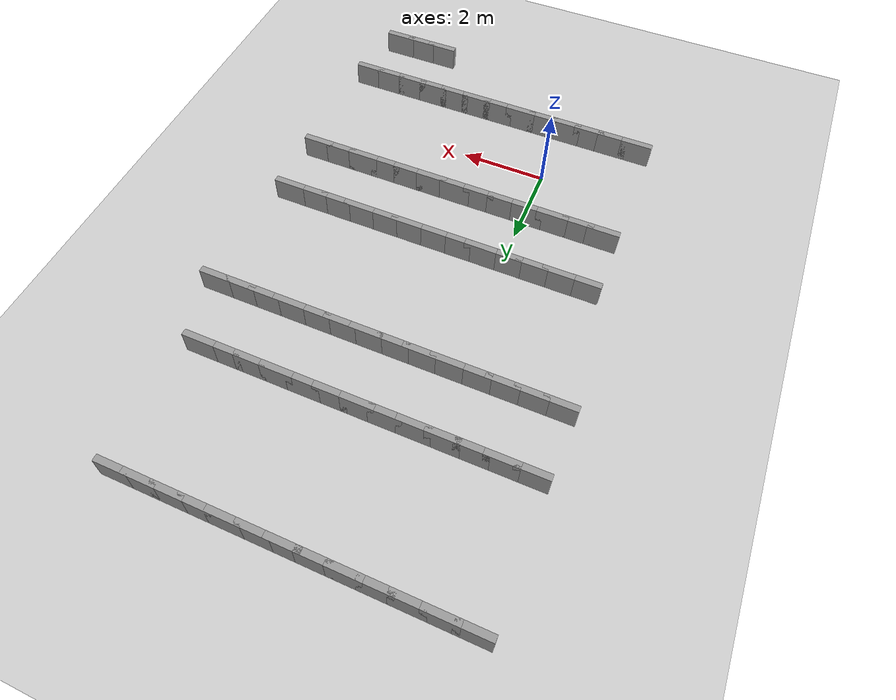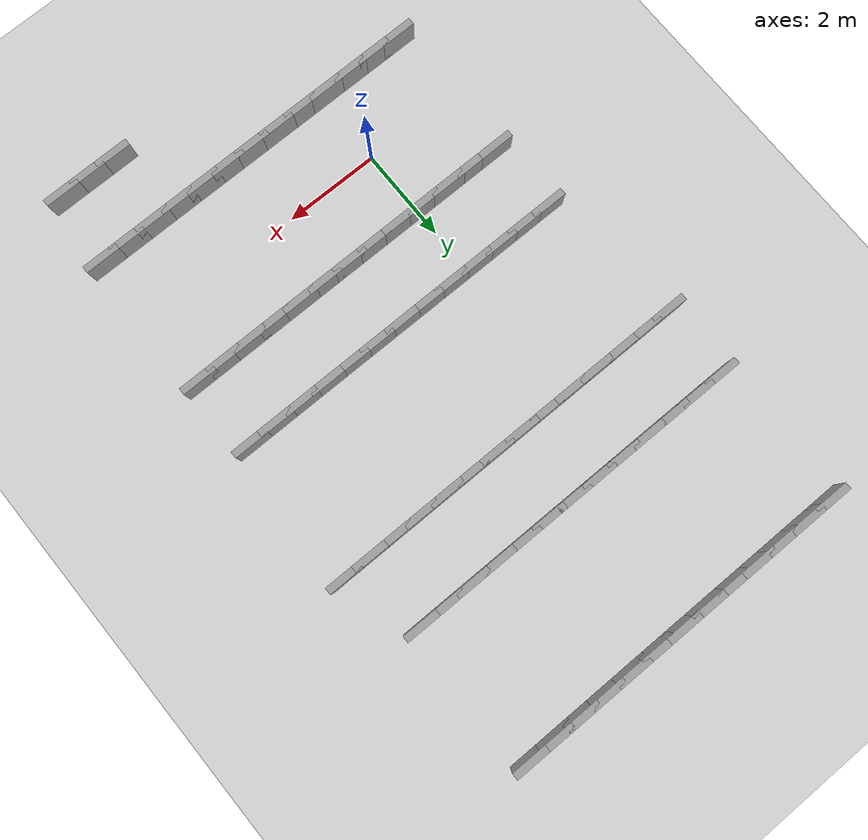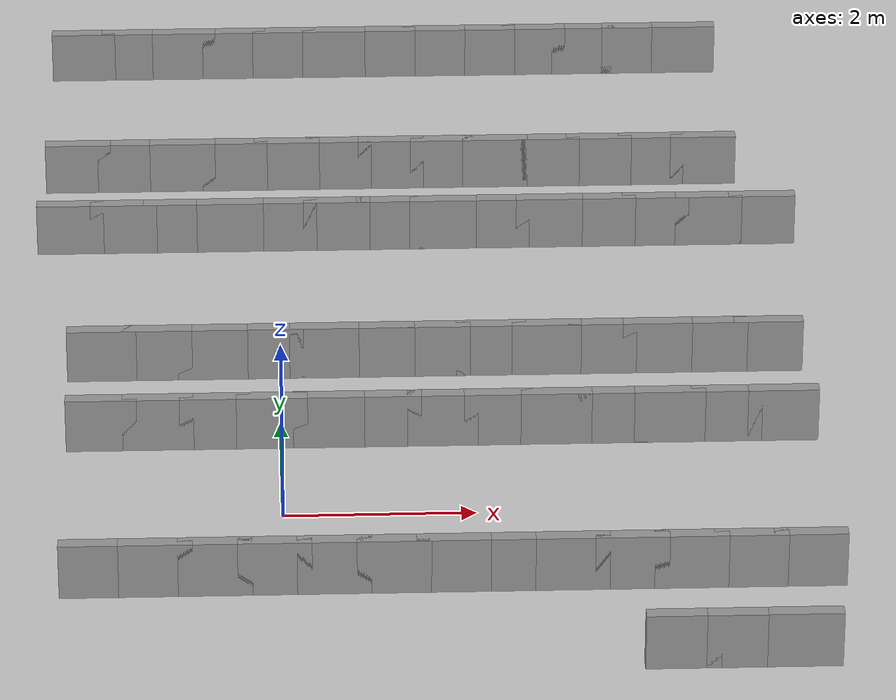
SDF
<sdf version="1.7">
 <world name="default">
  <model name="ground_plane">
   <static>1</static>
   <link name="link">
    <collision name="collision">
     <geometry><plane><normal>0 0 1</normal><size>100 100</size></plane></geometry>
     <surface><friction><ode><mu>100</mu><mu2>50</mu2></ode></friction></surface>
    </collision>
    <visual name="visual">
     <cast_shadows>0</cast_shadows>
     <geometry><plane><normal>0 0 1</normal><size>100 100</size></plane></geometry>
     <material>
      <script><uri>file://media/materials/scripts/gazebo.material</uri><name>Gazebo/Grey</name></script>
     </material>
    </visual>
   </link>
  </model>
  <model name="rand_serp_02">
   <link name="Wall_12">
    <collision name="Wall_12_Collision">
     <geometry><box><size>0.7500 0.1500 0.6000</size></box></geometry>
     <pose>0 0 0.3000 0 -0 0</pose>
    </collision>
    <visual name="Wall_12_Visual">
     <pose>0 0 0.3000 0 -0 0</pose>
     <geometry><box><size>0.7500 0.1500 0.6000</size></box></geometry>
     <material>
      <script><uri>file://media/materials/scripts/gazebo.material</uri><name>Gazebo/Grey</name></script>
      <ambient>1 1 1 1</ambient>
     </material>
    </visual>
    <pose>-2.2659 10.6147 0 0 -0 0.00000</pose>
   </link>
   <link name="Wall_13">
    <collision name="Wall_13_Collision">
     <geometry><box><size>0.7500 0.1500 0.6000</size></box></geometry>
     <pose>0 0 0.3000 0 -0 0</pose>
    </collision>
    <visual name="Wall_13_Visual">
     <pose>0 0 0.3000 0 -0 0</pose>
     <geometry><box><size>0.7500 0.1500 0.6000</size></box></geometry>
     <material>
      <script><uri>file://media/materials/scripts/gazebo.material</uri><name>Gazebo/Grey</name></script>
      <ambient>1 1 1 1</ambient>
     </material>
    </visual>
    <pose>-1.6659 10.6147 0 0 -0 0.00000</pose>
   </link>
   <link name="Wall_14">
    <collision name="Wall_14_Collision">
     <geometry><box><size>0.7500 0.1500 0.6000</size></box></geometry>
     <pose>0 0 0.3000 0 -0 0</pose>
    </collision>
    <visual name="Wall_14_Visual">
     <pose>0 0 0.3000 0 -0 0</pose>
     <geometry><box><size>0.7500 0.1500 0.6000</size></box></geometry>
     <material>
      <script><uri>file://media/materials/scripts/gazebo.material</uri><name>Gazebo/Grey</name></script>
      <ambient>1 1 1 1</ambient>
     </material>
    </visual>
    <pose>-1.0659 10.6147 0 0 -0 0.00000</pose>
   </link>
   <link name="Wall_15">
    <collision name="Wall_15_Collision">
     <geometry><box><size>0.7500 0.1500 0.6000</size></box></geometry>
     <pose>0 0 0.3000 0 -0 0</pose>
    </collision>
    <visual name="Wall_15_Visual">
     <pose>0 0 0.3000 0 -0 0</pose>
     <geometry><box><size>0.7500 0.1500 0.6000</size></box></geometry>
     <material>
      <script><uri>file://media/materials/scripts/gazebo.material</uri><name>Gazebo/Grey</name></script>
      <ambient>1 1 1 1</ambient>
     </material>
    </visual>
    <pose>-0.4659 10.6147 0 0 -0 0.00000</pose>
   </link>
   <link name="Wall_16">
    <collision name="Wall_16_Collision">
     <geometry><box><size>0.7500 0.1500 0.6000</size></box></geometry>
     <pose>0 0 0.3000 0 -0 0</pose>
    </collision>
    <visual name="Wall_16_Visual">
     <pose>0 0 0.3000 0 -0 0</pose>
     <geometry><box><size>0.7500 0.1500 0.6000</size></box></geometry>
     <material>
      <script><uri>file://media/materials/scripts/gazebo.material</uri><name>Gazebo/Grey</name></script>
      <ambient>1 1 1 1</ambient>
     </material>
    </visual>
    <pose>0.1341 10.6147 0 0 -0 0.00000</pose>
   </link>
   <link name="Wall_17">
    <collision name="Wall_17_Collision">
     <geometry><box><size>0.7500 0.1500 0.6000</size></box></geometry>
     <pose>0 0 0.3000 0 -0 0</pose>
    </collision>
    <visual name="Wall_17_Visual">
     <pose>0 0 0.3000 0 -0 0</pose>
     <geometry><box><size>0.7500 0.1500 0.6000</size></box></geometry>
     <material>
      <script><uri>file://media/materials/scripts/gazebo.material</uri><name>Gazebo/Grey</name></script>
      <ambient>1 1 1 1</ambient>
     </material>
    </visual>
    <pose>0.7341 10.6147 0 0 -0 0.00000</pose>
   </link>
   <link name="Wall_18">
    <collision name="Wall_18_Collision">
     <geometry><box><size>0.7500 0.1500 0.6000</size></box></geometry>
     <pose>0 0 0.3000 0 -0 0</pose>
    </collision>
    <visual name="Wall_18_Visual">
     <pose>0 0 0.3000 0 -0 0</pose>
     <geometry><box><size>0.7500 0.1500 0.6000</size></box></geometry>
     <material>
      <script><uri>file://media/materials/scripts/gazebo.material</uri><name>Gazebo/Grey</name></script>
      <ambient>1 1 1 1</ambient>
     </material>
    </visual>
    <pose>1.3341 10.6147 0 0 -0 0.00000</pose>
   </link>
   <link name="Wall_19">
    <collision name="Wall_19_Collision">
     <geometry><box><size>0.7500 0.1500 0.6000</size></box></geometry>
     <pose>0 0 0.3000 0 -0 0</pose>
    </collision>
    <visual name="Wall_19_Visual">
     <pose>0 0 0.3000 0 -0 0</pose>
     <geometry><box><size>0.7500 0.1500 0.6000</size></box></geometry>
     <material>
      <script><uri>file://media/materials/scripts/gazebo.material</uri><name>Gazebo/Grey</name></script>
      <ambient>1 1 1 1</ambient>
     </material>
    </visual>
    <pose>1.9341 10.6147 0 0 -0 0.00000</pose>
   </link>
   <link name="Wall_20">
    <collision name="Wall_20_Collision">
     <geometry><box><size>0.7500 0.1500 0.6000</size></box></geometry>
     <pose>0 0 0.3000 0 -0 0</pose>
    </collision>
    <visual name="Wall_20_Visual">
     <pose>0 0 0.3000 0 -0 0</pose>
     <geometry><box><size>0.7500 0.1500 0.6000</size></box></geometry>
     <material>
      <script><uri>file://media/materials/scripts/gazebo.material</uri><name>Gazebo/Grey</name></script>
      <ambient>1 1 1 1</ambient>
     </material>
    </visual>
    <pose>2.5341 10.6147 0 0 -0 0.00000</pose>
   </link>
   <link name="Wall_21">
    <collision name="Wall_21_Collision">
     <geometry><box><size>0.7500 0.1500 0.6000</size></box></geometry>
     <pose>0 0 0.3000 0 -0 0</pose>
    </collision>
    <visual name="Wall_21_Visual">
     <pose>0 0 0.3000 0 -0 0</pose>
     <geometry><box><size>0.7500 0.1500 0.6000</size></box></geometry>
     <material>
      <script><uri>file://media/materials/scripts/gazebo.material</uri><name>Gazebo/Grey</name></script>
      <ambient>1 1 1 1</ambient>
     </material>
    </visual>
    <pose>3.1341 10.6147 0 0 -0 0.00000</pose>
   </link>
   <link name="Wall_22">
    <collision name="Wall_22_Collision">
     <geometry><box><size>0.7500 0.1500 0.6000</size></box></geometry>
     <pose>0 0 0.3000 0 -0 0</pose>
    </collision>
    <visual name="Wall_22_Visual">
     <pose>0 0 0.3000 0 -0 0</pose>
     <geometry><box><size>0.7500 0.1500 0.6000</size></box></geometry>
     <material>
      <script><uri>file://media/materials/scripts/gazebo.material</uri><name>Gazebo/Grey</name></script>
      <ambient>1 1 1 1</ambient>
     </material>
    </visual>
    <pose>3.7341 10.6147 0 0 -0 0.00000</pose>
   </link>
   <link name="Wall_23">
    <collision name="Wall_23_Collision">
     <geometry><box><size>0.7500 0.1500 0.6000</size></box></geometry>
     <pose>0 0 0.3000 0 -0 0</pose>
    </collision>
    <visual name="Wall_23_Visual">
     <pose>0 0 0.3000 0 -0 0</pose>
     <geometry><box><size>0.7500 0.1500 0.6000</size></box></geometry>
     <material>
      <script><uri>file://media/materials/scripts/gazebo.material</uri><name>Gazebo/Grey</name></script>
      <ambient>1 1 1 1</ambient>
     </material>
    </visual>
    <pose>4.3341 10.6147 0 0 -0 0.00000</pose>
   </link>
   <link name="Wall_24">
    <collision name="Wall_24_Collision">
     <geometry><box><size>0.7500 0.1500 0.6000</size></box></geometry>
     <pose>0 0 0.3000 0 -0 0</pose>
    </collision>
    <visual name="Wall_24_Visual">
     <pose>0 0 0.3000 0 -0 0</pose>
     <geometry><box><size>0.7500 0.1500 0.6000</size></box></geometry>
     <material>
      <script><uri>file://media/materials/scripts/gazebo.material</uri><name>Gazebo/Grey</name></script>
      <ambient>1 1 1 1</ambient>
     </material>
    </visual>
    <pose>4.9341 10.6147 0 0 -0 0.00000</pose>
   </link>
   <link name="Wall_57">
    <collision name="Wall_57_Collision">
     <geometry><box><size>0.7500 0.1500 0.6000</size></box></geometry>
     <pose>0 0 0.3000 0 -0 0</pose>
    </collision>
    <visual name="Wall_57_Visual">
     <pose>0 0 0.3000 0 -0 0</pose>
     <geometry><box><size>0.7500 0.1500 0.6000</size></box></geometry>
     <material>
      <script><uri>file://media/materials/scripts/gazebo.material</uri><name>Gazebo/Grey</name></script>
      <ambient>1 1 1 1</ambient>
     </material>
    </visual>
    <pose>5.2833 3.0475 0 0 -0 3.14159</pose>
   </link>
   <link name="Wall_58">
    <collision name="Wall_58_Collision">
     <geometry><box><size>0.7500 0.1500 0.6000</size></box></geometry>
     <pose>0 0 0.3000 0 -0 0</pose>
    </collision>
    <visual name="Wall_58_Visual">
     <pose>0 0 0.3000 0 -0 0</pose>
     <geometry><box><size>0.7500 0.1500 0.6000</size></box></geometry>
     <material>
      <script><uri>file://media/materials/scripts/gazebo.material</uri><name>Gazebo/Grey</name></script>
      <ambient>1 1 1 1</ambient>
     </material>
    </visual>
    <pose>4.6833 3.0475 0 0 -0 3.14159</pose>
   </link>
   <link name="Wall_59">
    <collision name="Wall_59_Collision">
     <geometry><box><size>0.7500 0.1500 0.6000</size></box></geometry>
     <pose>0 0 0.3000 0 -0 0</pose>
    </collision>
    <visual name="Wall_59_Visual">
     <pose>0 0 0.3000 0 -0 0</pose>
     <geometry><box><size>0.7500 0.1500 0.6000</size></box></geometry>
     <material>
      <script><uri>file://media/materials/scripts/gazebo.material</uri><name>Gazebo/Grey</name></script>
      <ambient>1 1 1 1</ambient>
     </material>
    </visual>
    <pose>4.0833 3.0475 0 0 -0 3.14159</pose>
   </link>
   <link name="Wall_60">
    <collision name="Wall_60_Collision">
     <geometry><box><size>0.7500 0.1500 0.6000</size></box></geometry>
     <pose>0 0 0.3000 0 -0 0</pose>
    </collision>
    <visual name="Wall_60_Visual">
     <pose>0 0 0.3000 0 -0 0</pose>
     <geometry><box><size>0.7500 0.1500 0.6000</size></box></geometry>
     <material>
      <script><uri>file://media/materials/scripts/gazebo.material</uri><name>Gazebo/Grey</name></script>
      <ambient>1 1 1 1</ambient>
     </material>
    </visual>
    <pose>3.4833 3.0475 0 0 -0 3.14159</pose>
   </link>
   <link name="Wall_61">
    <collision name="Wall_61_Collision">
     <geometry><box><size>0.7500 0.1500 0.6000</size></box></geometry>
     <pose>0 0 0.3000 0 -0 0</pose>
    </collision>
    <visual name="Wall_61_Visual">
     <pose>0 0 0.3000 0 -0 0</pose>
     <geometry><box><size>0.7500 0.1500 0.6000</size></box></geometry>
     <material>
      <script><uri>file://media/materials/scripts/gazebo.material</uri><name>Gazebo/Grey</name></script>
      <ambient>1 1 1 1</ambient>
     </material>
    </visual>
    <pose>2.8833 3.0475 0 0 -0 3.14159</pose>
   </link>
   <link name="Wall_62">
    <collision name="Wall_62_Collision">
     <geometry><box><size>0.7500 0.1500 0.6000</size></box></geometry>
     <pose>0 0 0.3000 0 -0 0</pose>
    </collision>
    <visual name="Wall_62_Visual">
     <pose>0 0 0.3000 0 -0 0</pose>
     <geometry><box><size>0.7500 0.1500 0.6000</size></box></geometry>
     <material>
      <script><uri>file://media/materials/scripts/gazebo.material</uri><name>Gazebo/Grey</name></script>
      <ambient>1 1 1 1</ambient>
     </material>
    </visual>
    <pose>2.2833 3.0475 0 0 -0 3.14159</pose>
   </link>
   <link name="Wall_63">
    <collision name="Wall_63_Collision">
     <geometry><box><size>0.7500 0.1500 0.6000</size></box></geometry>
     <pose>0 0 0.3000 0 -0 0</pose>
    </collision>
    <visual name="Wall_63_Visual">
     <pose>0 0 0.3000 0 -0 0</pose>
     <geometry><box><size>0.7500 0.1500 0.6000</size></box></geometry>
     <material>
      <script><uri>file://media/materials/scripts/gazebo.material</uri><name>Gazebo/Grey</name></script>
      <ambient>1 1 1 1</ambient>
     </material>
    </visual>
    <pose>1.6833 3.0475 0 0 -0 3.14159</pose>
   </link>
   <link name="Wall_64">
    <collision name="Wall_64_Collision">
     <geometry><box><size>0.7500 0.1500 0.6000</size></box></geometry>
     <pose>0 0 0.3000 0 -0 0</pose>
    </collision>
    <visual name="Wall_64_Visual">
     <pose>0 0 0.3000 0 -0 0</pose>
     <geometry><box><size>0.7500 0.1500 0.6000</size></box></geometry>
     <material>
      <script><uri>file://media/materials/scripts/gazebo.material</uri><name>Gazebo/Grey</name></script>
      <ambient>1 1 1 1</ambient>
     </material>
    </visual>
    <pose>1.0833 3.0475 0 0 -0 3.14159</pose>
   </link>
   <link name="Wall_65">
    <collision name="Wall_65_Collision">
     <geometry><box><size>0.7500 0.1500 0.6000</size></box></geometry>
     <pose>0 0 0.3000 0 -0 0</pose>
    </collision>
    <visual name="Wall_65_Visual">
     <pose>0 0 0.3000 0 -0 0</pose>
     <geometry><box><size>0.7500 0.1500 0.6000</size></box></geometry>
     <material>
      <script><uri>file://media/materials/scripts/gazebo.material</uri><name>Gazebo/Grey</name></script>
      <ambient>1 1 1 1</ambient>
     </material>
    </visual>
    <pose>0.4833 3.0475 0 0 -0 3.14159</pose>
   </link>
   <link name="Wall_66">
    <collision name="Wall_66_Collision">
     <geometry><box><size>0.7500 0.1500 0.6000</size></box></geometry>
     <pose>0 0 0.3000 0 -0 0</pose>
    </collision>
    <visual name="Wall_66_Visual">
     <pose>0 0 0.3000 0 -0 0</pose>
     <geometry><box><size>0.7500 0.1500 0.6000</size></box></geometry>
     <material>
      <script><uri>file://media/materials/scripts/gazebo.material</uri><name>Gazebo/Grey</name></script>
      <ambient>1 1 1 1</ambient>
     </material>
    </visual>
    <pose>-0.1167 3.0475 0 0 -0 3.14159</pose>
   </link>
   <link name="Wall_67">
    <collision name="Wall_67_Collision">
     <geometry><box><size>0.7500 0.1500 0.6000</size></box></geometry>
     <pose>0 0 0.3000 0 -0 0</pose>
    </collision>
    <visual name="Wall_67_Visual">
     <pose>0 0 0.3000 0 -0 0</pose>
     <geometry><box><size>0.7500 0.1500 0.6000</size></box></geometry>
     <material>
      <script><uri>file://media/materials/scripts/gazebo.material</uri><name>Gazebo/Grey</name></script>
      <ambient>1 1 1 1</ambient>
     </material>
    </visual>
    <pose>-0.7167 3.0475 0 0 -0 3.14159</pose>
   </link>
   <link name="Wall_68">
    <collision name="Wall_68_Collision">
     <geometry><box><size>0.7500 0.1500 0.6000</size></box></geometry>
     <pose>0 0 0.3000 0 -0 0</pose>
    </collision>
    <visual name="Wall_68_Visual">
     <pose>0 0 0.3000 0 -0 0</pose>
     <geometry><box><size>0.7500 0.1500 0.6000</size></box></geometry>
     <material>
      <script><uri>file://media/materials/scripts/gazebo.material</uri><name>Gazebo/Grey</name></script>
      <ambient>1 1 1 1</ambient>
     </material>
    </visual>
    <pose>-1.3167 3.0475 0 0 -0 3.14159</pose>
   </link>
   <link name="Wall_69">
    <collision name="Wall_69_Collision">
     <geometry><box><size>0.7500 0.1500 0.6000</size></box></geometry>
     <pose>0 0 0.3000 0 -0 0</pose>
    </collision>
    <visual name="Wall_69_Visual">
     <pose>0 0 0.3000 0 -0 0</pose>
     <geometry><box><size>0.7500 0.1500 0.6000</size></box></geometry>
     <material>
      <script><uri>file://media/materials/scripts/gazebo.material</uri><name>Gazebo/Grey</name></script>
      <ambient>1 1 1 1</ambient>
     </material>
    </visual>
    <pose>-1.9167 3.0475 0 0 -0 3.14159</pose>
   </link>
   <link name="Wall_97">
    <collision name="Wall_97_Collision">
     <geometry><box><size>0.7500 0.1500 0.6000</size></box></geometry>
     <pose>0 0 0.3000 0 -0 0</pose>
    </collision>
    <visual name="Wall_97_Visual">
     <pose>0 0 0.3000 0 -0 0</pose>
     <geometry><box><size>0.7500 0.1500 0.6000</size></box></geometry>
     <material>
      <script><uri>file://media/materials/scripts/gazebo.material</uri><name>Gazebo/Grey</name></script>
      <ambient>1 1 1 1</ambient>
     </material>
    </visual>
    <pose>-1.8952 1.5066 0 0 -0 0.00000</pose>
   </link>
   <link name="Wall_98">
    <collision name="Wall_98_Collision">
     <geometry><box><size>0.7500 0.1500 0.6000</size></box></geometry>
     <pose>0 0 0.3000 0 -0 0</pose>
    </collision>
    <visual name="Wall_98_Visual">
     <pose>0 0 0.3000 0 -0 0</pose>
     <geometry><box><size>0.7500 0.1500 0.6000</size></box></geometry>
     <material>
      <script><uri>file://media/materials/scripts/gazebo.material</uri><name>Gazebo/Grey</name></script>
      <ambient>1 1 1 1</ambient>
     </material>
    </visual>
    <pose>-1.2952 1.5066 0 0 -0 0.00000</pose>
   </link>
   <link name="Wall_99">
    <collision name="Wall_99_Collision">
     <geometry><box><size>0.7500 0.1500 0.6000</size></box></geometry>
     <pose>0 0 0.3000 0 -0 0</pose>
    </collision>
    <visual name="Wall_99_Visual">
     <pose>0 0 0.3000 0 -0 0</pose>
     <geometry><box><size>0.7500 0.1500 0.6000</size></box></geometry>
     <material>
      <script><uri>file://media/materials/scripts/gazebo.material</uri><name>Gazebo/Grey</name></script>
      <ambient>1 1 1 1</ambient>
     </material>
    </visual>
    <pose>-0.6952 1.5066 0 0 -0 0.00000</pose>
   </link>
   <link name="Wall_100">
    <collision name="Wall_100_Collision">
     <geometry><box><size>0.7500 0.1500 0.6000</size></box></geometry>
     <pose>0 0 0.3000 0 -0 0</pose>
    </collision>
    <visual name="Wall_100_Visual">
     <pose>0 0 0.3000 0 -0 0</pose>
     <geometry><box><size>0.7500 0.1500 0.6000</size></box></geometry>
     <material>
      <script><uri>file://media/materials/scripts/gazebo.material</uri><name>Gazebo/Grey</name></script>
      <ambient>1 1 1 1</ambient>
     </material>
    </visual>
    <pose>-0.0952 1.5066 0 0 -0 0.00000</pose>
   </link>
   <link name="Wall_101">
    <collision name="Wall_101_Collision">
     <geometry><box><size>0.7500 0.1500 0.6000</size></box></geometry>
     <pose>0 0 0.3000 0 -0 0</pose>
    </collision>
    <visual name="Wall_101_Visual">
     <pose>0 0 0.3000 0 -0 0</pose>
     <geometry><box><size>0.7500 0.1500 0.6000</size></box></geometry>
     <material>
      <script><uri>file://media/materials/scripts/gazebo.material</uri><name>Gazebo/Grey</name></script>
      <ambient>1 1 1 1</ambient>
     </material>
    </visual>
    <pose>0.5048 1.5066 0 0 -0 0.00000</pose>
   </link>
   <link name="Wall_102">
    <collision name="Wall_102_Collision">
     <geometry><box><size>0.7500 0.1500 0.6000</size></box></geometry>
     <pose>0 0 0.3000 0 -0 0</pose>
    </collision>
    <visual name="Wall_102_Visual">
     <pose>0 0 0.3000 0 -0 0</pose>
     <geometry><box><size>0.7500 0.1500 0.6000</size></box></geometry>
     <material>
      <script><uri>file://media/materials/scripts/gazebo.material</uri><name>Gazebo/Grey</name></script>
      <ambient>1 1 1 1</ambient>
     </material>
    </visual>
    <pose>1.1048 1.5066 0 0 -0 0.00000</pose>
   </link>
   <link name="Wall_103">
    <collision name="Wall_103_Collision">
     <geometry><box><size>0.7500 0.1500 0.6000</size></box></geometry>
     <pose>0 0 0.3000 0 -0 0</pose>
    </collision>
    <visual name="Wall_103_Visual">
     <pose>0 0 0.3000 0 -0 0</pose>
     <geometry><box><size>0.7500 0.1500 0.6000</size></box></geometry>
     <material>
      <script><uri>file://media/materials/scripts/gazebo.material</uri><name>Gazebo/Grey</name></script>
      <ambient>1 1 1 1</ambient>
     </material>
    </visual>
    <pose>1.7048 1.5066 0 0 -0 0.00000</pose>
   </link>
   <link name="Wall_104">
    <collision name="Wall_104_Collision">
     <geometry><box><size>0.7500 0.1500 0.6000</size></box></geometry>
     <pose>0 0 0.3000 0 -0 0</pose>
    </collision>
    <visual name="Wall_104_Visual">
     <pose>0 0 0.3000 0 -0 0</pose>
     <geometry><box><size>0.7500 0.1500 0.6000</size></box></geometry>
     <material>
      <script><uri>file://media/materials/scripts/gazebo.material</uri><name>Gazebo/Grey</name></script>
      <ambient>1 1 1 1</ambient>
     </material>
    </visual>
    <pose>2.3048 1.5066 0 0 -0 0.00000</pose>
   </link>
   <link name="Wall_105">
    <collision name="Wall_105_Collision">
     <geometry><box><size>0.7500 0.1500 0.6000</size></box></geometry>
     <pose>0 0 0.3000 0 -0 0</pose>
    </collision>
    <visual name="Wall_105_Visual">
     <pose>0 0 0.3000 0 -0 0</pose>
     <geometry><box><size>0.7500 0.1500 0.6000</size></box></geometry>
     <material>
      <script><uri>file://media/materials/scripts/gazebo.material</uri><name>Gazebo/Grey</name></script>
      <ambient>1 1 1 1</ambient>
     </material>
    </visual>
    <pose>2.9048 1.5066 0 0 -0 0.00000</pose>
   </link>
   <link name="Wall_106">
    <collision name="Wall_106_Collision">
     <geometry><box><size>0.7500 0.1500 0.6000</size></box></geometry>
     <pose>0 0 0.3000 0 -0 0</pose>
    </collision>
    <visual name="Wall_106_Visual">
     <pose>0 0 0.3000 0 -0 0</pose>
     <geometry><box><size>0.7500 0.1500 0.6000</size></box></geometry>
     <material>
      <script><uri>file://media/materials/scripts/gazebo.material</uri><name>Gazebo/Grey</name></script>
      <ambient>1 1 1 1</ambient>
     </material>
    </visual>
    <pose>3.5048 1.5066 0 0 -0 0.00000</pose>
   </link>
   <link name="Wall_107">
    <collision name="Wall_107_Collision">
     <geometry><box><size>0.7500 0.1500 0.6000</size></box></geometry>
     <pose>0 0 0.3000 0 -0 0</pose>
    </collision>
    <visual name="Wall_107_Visual">
     <pose>0 0 0.3000 0 -0 0</pose>
     <geometry><box><size>0.7500 0.1500 0.6000</size></box></geometry>
     <material>
      <script><uri>file://media/materials/scripts/gazebo.material</uri><name>Gazebo/Grey</name></script>
      <ambient>1 1 1 1</ambient>
     </material>
    </visual>
    <pose>4.1048 1.5066 0 0 -0 0.00000</pose>
   </link>
   <link name="Wall_108">
    <collision name="Wall_108_Collision">
     <geometry><box><size>0.7500 0.1500 0.6000</size></box></geometry>
     <pose>0 0 0.3000 0 -0 0</pose>
    </collision>
    <visual name="Wall_108_Visual">
     <pose>0 0 0.3000 0 -0 0</pose>
     <geometry><box><size>0.7500 0.1500 0.6000</size></box></geometry>
     <material>
      <script><uri>file://media/materials/scripts/gazebo.material</uri><name>Gazebo/Grey</name></script>
      <ambient>1 1 1 1</ambient>
     </material>
    </visual>
    <pose>4.7048 1.5066 0 0 -0 0.00000</pose>
   </link>
   <link name="Wall_109">
    <collision name="Wall_109_Collision">
     <geometry><box><size>0.7500 0.1500 0.6000</size></box></geometry>
     <pose>0 0 0.3000 0 -0 0</pose>
    </collision>
    <visual name="Wall_109_Visual">
     <pose>0 0 0.3000 0 -0 0</pose>
     <geometry><box><size>0.7500 0.1500 0.6000</size></box></geometry>
     <material>
      <script><uri>file://media/materials/scripts/gazebo.material</uri><name>Gazebo/Grey</name></script>
      <ambient>1 1 1 1</ambient>
     </material>
    </visual>
    <pose>5.3048 1.5066 0 0 -0 0.00000</pose>
   </link>
   <link name="Wall_214">
    <collision name="Wall_214_Collision">
     <geometry><box><size>0.7500 0.1500 0.6000</size></box></geometry>
     <pose>0 0 0.3000 0 -0 0</pose>
    </collision>
    <visual name="Wall_214_Visual">
     <pose>0 0 0.3000 0 -0 0</pose>
     <geometry><box><size>0.7500 0.1500 0.6000</size></box></geometry>
     <material>
      <script><uri>file://media/materials/scripts/gazebo.material</uri><name>Gazebo/Grey</name></script>
      <ambient>1 1 1 1</ambient>
     </material>
    </visual>
    <pose>-2.2659 7.6015 0 0 -0 0.00000</pose>
   </link>
   <link name="Wall_215">
    <collision name="Wall_215_Collision">
     <geometry><box><size>0.7500 0.1500 0.6000</size></box></geometry>
     <pose>0 0 0.3000 0 -0 0</pose>
    </collision>
    <visual name="Wall_215_Visual">
     <pose>0 0 0.3000 0 -0 0</pose>
     <geometry><box><size>0.7500 0.1500 0.6000</size></box></geometry>
     <material>
      <script><uri>file://media/materials/scripts/gazebo.material</uri><name>Gazebo/Grey</name></script>
      <ambient>1 1 1 1</ambient>
     </material>
    </visual>
    <pose>-1.6659 7.6015 0 0 -0 0.00000</pose>
   </link>
   <link name="Wall_216">
    <collision name="Wall_216_Collision">
     <geometry><box><size>0.7500 0.1500 0.6000</size></box></geometry>
     <pose>0 0 0.3000 0 -0 0</pose>
    </collision>
    <visual name="Wall_216_Visual">
     <pose>0 0 0.3000 0 -0 0</pose>
     <geometry><box><size>0.7500 0.1500 0.6000</size></box></geometry>
     <material>
      <script><uri>file://media/materials/scripts/gazebo.material</uri><name>Gazebo/Grey</name></script>
      <ambient>1 1 1 1</ambient>
     </material>
    </visual>
    <pose>-1.0659 7.6015 0 0 -0 0.00000</pose>
   </link>
   <link name="Wall_217">
    <collision name="Wall_217_Collision">
     <geometry><box><size>0.7500 0.1500 0.6000</size></box></geometry>
     <pose>0 0 0.3000 0 -0 0</pose>
    </collision>
    <visual name="Wall_217_Visual">
     <pose>0 0 0.3000 0 -0 0</pose>
     <geometry><box><size>0.7500 0.1500 0.6000</size></box></geometry>
     <material>
      <script><uri>file://media/materials/scripts/gazebo.material</uri><name>Gazebo/Grey</name></script>
      <ambient>1 1 1 1</ambient>
     </material>
    </visual>
    <pose>-0.4659 7.6015 0 0 -0 0.00000</pose>
   </link>
   <link name="Wall_218">
    <collision name="Wall_218_Collision">
     <geometry><box><size>0.7500 0.1500 0.6000</size></box></geometry>
     <pose>0 0 0.3000 0 -0 0</pose>
    </collision>
    <visual name="Wall_218_Visual">
     <pose>0 0 0.3000 0 -0 0</pose>
     <geometry><box><size>0.7500 0.1500 0.6000</size></box></geometry>
     <material>
      <script><uri>file://media/materials/scripts/gazebo.material</uri><name>Gazebo/Grey</name></script>
      <ambient>1 1 1 1</ambient>
     </material>
    </visual>
    <pose>0.1341 7.6015 0 0 -0 0.00000</pose>
   </link>
   <link name="Wall_219">
    <collision name="Wall_219_Collision">
     <geometry><box><size>0.7500 0.1500 0.6000</size></box></geometry>
     <pose>0 0 0.3000 0 -0 0</pose>
    </collision>
    <visual name="Wall_219_Visual">
     <pose>0 0 0.3000 0 -0 0</pose>
     <geometry><box><size>0.7500 0.1500 0.6000</size></box></geometry>
     <material>
      <script><uri>file://media/materials/scripts/gazebo.material</uri><name>Gazebo/Grey</name></script>
      <ambient>1 1 1 1</ambient>
     </material>
    </visual>
    <pose>0.7341 7.6015 0 0 -0 0.00000</pose>
   </link>
   <link name="Wall_220">
    <collision name="Wall_220_Collision">
     <geometry><box><size>0.7500 0.1500 0.6000</size></box></geometry>
     <pose>0 0 0.3000 0 -0 0</pose>
    </collision>
    <visual name="Wall_220_Visual">
     <pose>0 0 0.3000 0 -0 0</pose>
     <geometry><box><size>0.7500 0.1500 0.6000</size></box></geometry>
     <material>
      <script><uri>file://media/materials/scripts/gazebo.material</uri><name>Gazebo/Grey</name></script>
      <ambient>1 1 1 1</ambient>
     </material>
    </visual>
    <pose>1.3341 7.6015 0 0 -0 0.00000</pose>
   </link>
   <link name="Wall_221">
    <collision name="Wall_221_Collision">
     <geometry><box><size>0.7500 0.1500 0.6000</size></box></geometry>
     <pose>0 0 0.3000 0 -0 0</pose>
    </collision>
    <visual name="Wall_221_Visual">
     <pose>0 0 0.3000 0 -0 0</pose>
     <geometry><box><size>0.7500 0.1500 0.6000</size></box></geometry>
     <material>
      <script><uri>file://media/materials/scripts/gazebo.material</uri><name>Gazebo/Grey</name></script>
      <ambient>1 1 1 1</ambient>
     </material>
    </visual>
    <pose>1.9341 7.6015 0 0 -0 0.00000</pose>
   </link>
   <link name="Wall_222">
    <collision name="Wall_222_Collision">
     <geometry><box><size>0.7500 0.1500 0.6000</size></box></geometry>
     <pose>0 0 0.3000 0 -0 0</pose>
    </collision>
    <visual name="Wall_222_Visual">
     <pose>0 0 0.3000 0 -0 0</pose>
     <geometry><box><size>0.7500 0.1500 0.6000</size></box></geometry>
     <material>
      <script><uri>file://media/materials/scripts/gazebo.material</uri><name>Gazebo/Grey</name></script>
      <ambient>1 1 1 1</ambient>
     </material>
    </visual>
    <pose>2.5341 7.6015 0 0 -0 0.00000</pose>
   </link>
   <link name="Wall_223">
    <collision name="Wall_223_Collision">
     <geometry><box><size>0.7500 0.1500 0.6000</size></box></geometry>
     <pose>0 0 0.3000 0 -0 0</pose>
    </collision>
    <visual name="Wall_223_Visual">
     <pose>0 0 0.3000 0 -0 0</pose>
     <geometry><box><size>0.7500 0.1500 0.6000</size></box></geometry>
     <material>
      <script><uri>file://media/materials/scripts/gazebo.material</uri><name>Gazebo/Grey</name></script>
      <ambient>1 1 1 1</ambient>
     </material>
    </visual>
    <pose>3.1341 7.6015 0 0 -0 0.00000</pose>
   </link>
   <link name="Wall_224">
    <collision name="Wall_224_Collision">
     <geometry><box><size>0.7500 0.1500 0.6000</size></box></geometry>
     <pose>0 0 0.3000 0 -0 0</pose>
    </collision>
    <visual name="Wall_224_Visual">
     <pose>0 0 0.3000 0 -0 0</pose>
     <geometry><box><size>0.7500 0.1500 0.6000</size></box></geometry>
     <material>
      <script><uri>file://media/materials/scripts/gazebo.material</uri><name>Gazebo/Grey</name></script>
      <ambient>1 1 1 1</ambient>
     </material>
    </visual>
    <pose>3.7341 7.6015 0 0 -0 0.00000</pose>
   </link>
   <link name="Wall_225">
    <collision name="Wall_225_Collision">
     <geometry><box><size>0.7500 0.1500 0.6000</size></box></geometry>
     <pose>0 0 0.3000 0 -0 0</pose>
    </collision>
    <visual name="Wall_225_Visual">
     <pose>0 0 0.3000 0 -0 0</pose>
     <geometry><box><size>0.7500 0.1500 0.6000</size></box></geometry>
     <material>
      <script><uri>file://media/materials/scripts/gazebo.material</uri><name>Gazebo/Grey</name></script>
      <ambient>1 1 1 1</ambient>
     </material>
    </visual>
    <pose>4.3341 7.6015 0 0 -0 0.00000</pose>
   </link>
   <link name="Wall_226">
    <collision name="Wall_226_Collision">
     <geometry><box><size>0.7500 0.1500 0.6000</size></box></geometry>
     <pose>0 0 0.3000 0 -0 0</pose>
    </collision>
    <visual name="Wall_226_Visual">
     <pose>0 0 0.3000 0 -0 0</pose>
     <geometry><box><size>0.7500 0.1500 0.6000</size></box></geometry>
     <material>
      <script><uri>file://media/materials/scripts/gazebo.material</uri><name>Gazebo/Grey</name></script>
      <ambient>1 1 1 1</ambient>
     </material>
    </visual>
    <pose>4.9341 7.6015 0 0 -0 0.00000</pose>
   </link>
   <link name="Wall_243">
    <collision name="Wall_243_Collision">
     <geometry><box><size>0.7500 0.1500 0.6000</size></box></geometry>
     <pose>0 0 0.3000 0 -0 0</pose>
    </collision>
    <visual name="Wall_243_Visual">
     <pose>0 0 0.3000 0 -0 0</pose>
     <geometry><box><size>0.7500 0.1500 0.6000</size></box></geometry>
     <material>
      <script><uri>file://media/materials/scripts/gazebo.material</uri><name>Gazebo/Grey</name></script>
      <ambient>1 1 1 1</ambient>
     </material>
    </visual>
    <pose>5.4778 6.0606 0 0 -0 3.14159</pose>
   </link>
   <link name="Wall_244">
    <collision name="Wall_244_Collision">
     <geometry><box><size>0.7500 0.1500 0.6000</size></box></geometry>
     <pose>0 0 0.3000 0 -0 0</pose>
    </collision>
    <visual name="Wall_244_Visual">
     <pose>0 0 0.3000 0 -0 0</pose>
     <geometry><box><size>0.7500 0.1500 0.6000</size></box></geometry>
     <material>
      <script><uri>file://media/materials/scripts/gazebo.material</uri><name>Gazebo/Grey</name></script>
      <ambient>1 1 1 1</ambient>
     </material>
    </visual>
    <pose>4.8778 6.0606 0 0 -0 3.14159</pose>
   </link>
   <link name="Wall_245">
    <collision name="Wall_245_Collision">
     <geometry><box><size>0.7500 0.1500 0.6000</size></box></geometry>
     <pose>0 0 0.3000 0 -0 0</pose>
    </collision>
    <visual name="Wall_245_Visual">
     <pose>0 0 0.3000 0 -0 0</pose>
     <geometry><box><size>0.7500 0.1500 0.6000</size></box></geometry>
     <material>
      <script><uri>file://media/materials/scripts/gazebo.material</uri><name>Gazebo/Grey</name></script>
      <ambient>1 1 1 1</ambient>
     </material>
    </visual>
    <pose>4.2778 6.0606 0 0 -0 3.14159</pose>
   </link>
   <link name="Wall_246">
    <collision name="Wall_246_Collision">
     <geometry><box><size>0.7500 0.1500 0.6000</size></box></geometry>
     <pose>0 0 0.3000 0 -0 0</pose>
    </collision>
    <visual name="Wall_246_Visual">
     <pose>0 0 0.3000 0 -0 0</pose>
     <geometry><box><size>0.7500 0.1500 0.6000</size></box></geometry>
     <material>
      <script><uri>file://media/materials/scripts/gazebo.material</uri><name>Gazebo/Grey</name></script>
      <ambient>1 1 1 1</ambient>
     </material>
    </visual>
    <pose>3.6778 6.0606 0 0 -0 3.14159</pose>
   </link>
   <link name="Wall_247">
    <collision name="Wall_247_Collision">
     <geometry><box><size>0.7500 0.1500 0.6000</size></box></geometry>
     <pose>0 0 0.3000 0 -0 0</pose>
    </collision>
    <visual name="Wall_247_Visual">
     <pose>0 0 0.3000 0 -0 0</pose>
     <geometry><box><size>0.7500 0.1500 0.6000</size></box></geometry>
     <material>
      <script><uri>file://media/materials/scripts/gazebo.material</uri><name>Gazebo/Grey</name></script>
      <ambient>1 1 1 1</ambient>
     </material>
    </visual>
    <pose>3.0778 6.0606 0 0 -0 3.14159</pose>
   </link>
   <link name="Wall_248">
    <collision name="Wall_248_Collision">
     <geometry><box><size>0.7500 0.1500 0.6000</size></box></geometry>
     <pose>0 0 0.3000 0 -0 0</pose>
    </collision>
    <visual name="Wall_248_Visual">
     <pose>0 0 0.3000 0 -0 0</pose>
     <geometry><box><size>0.7500 0.1500 0.6000</size></box></geometry>
     <material>
      <script><uri>file://media/materials/scripts/gazebo.material</uri><name>Gazebo/Grey</name></script>
      <ambient>1 1 1 1</ambient>
     </material>
    </visual>
    <pose>2.4778 6.0606 0 0 -0 3.14159</pose>
   </link>
   <link name="Wall_249">
    <collision name="Wall_249_Collision">
     <geometry><box><size>0.7500 0.1500 0.6000</size></box></geometry>
     <pose>0 0 0.3000 0 -0 0</pose>
    </collision>
    <visual name="Wall_249_Visual">
     <pose>0 0 0.3000 0 -0 0</pose>
     <geometry><box><size>0.7500 0.1500 0.6000</size></box></geometry>
     <material>
      <script><uri>file://media/materials/scripts/gazebo.material</uri><name>Gazebo/Grey</name></script>
      <ambient>1 1 1 1</ambient>
     </material>
    </visual>
    <pose>1.8778 6.0606 0 0 -0 3.14159</pose>
   </link>
   <link name="Wall_250">
    <collision name="Wall_250_Collision">
     <geometry><box><size>0.7500 0.1500 0.6000</size></box></geometry>
     <pose>0 0 0.3000 0 -0 0</pose>
    </collision>
    <visual name="Wall_250_Visual">
     <pose>0 0 0.3000 0 -0 0</pose>
     <geometry><box><size>0.7500 0.1500 0.6000</size></box></geometry>
     <material>
      <script><uri>file://media/materials/scripts/gazebo.material</uri><name>Gazebo/Grey</name></script>
      <ambient>1 1 1 1</ambient>
     </material>
    </visual>
    <pose>1.2778 6.0606 0 0 -0 3.14159</pose>
   </link>
   <link name="Wall_251">
    <collision name="Wall_251_Collision">
     <geometry><box><size>0.7500 0.1500 0.6000</size></box></geometry>
     <pose>0 0 0.3000 0 -0 0</pose>
    </collision>
    <visual name="Wall_251_Visual">
     <pose>0 0 0.3000 0 -0 0</pose>
     <geometry><box><size>0.7500 0.1500 0.6000</size></box></geometry>
     <material>
      <script><uri>file://media/materials/scripts/gazebo.material</uri><name>Gazebo/Grey</name></script>
      <ambient>1 1 1 1</ambient>
     </material>
    </visual>
    <pose>0.6778 6.0606 0 0 -0 3.14159</pose>
   </link>
   <link name="Wall_252">
    <collision name="Wall_252_Collision">
     <geometry><box><size>0.7500 0.1500 0.6000</size></box></geometry>
     <pose>0 0 0.3000 0 -0 0</pose>
    </collision>
    <visual name="Wall_252_Visual">
     <pose>0 0 0.3000 0 -0 0</pose>
     <geometry><box><size>0.7500 0.1500 0.6000</size></box></geometry>
     <material>
      <script><uri>file://media/materials/scripts/gazebo.material</uri><name>Gazebo/Grey</name></script>
      <ambient>1 1 1 1</ambient>
     </material>
    </visual>
    <pose>0.0778 6.0606 0 0 -0 3.14159</pose>
   </link>
   <link name="Wall_253">
    <collision name="Wall_253_Collision">
     <geometry><box><size>0.7500 0.1500 0.6000</size></box></geometry>
     <pose>0 0 0.3000 0 -0 0</pose>
    </collision>
    <visual name="Wall_253_Visual">
     <pose>0 0 0.3000 0 -0 0</pose>
     <geometry><box><size>0.7500 0.1500 0.6000</size></box></geometry>
     <material>
      <script><uri>file://media/materials/scripts/gazebo.material</uri><name>Gazebo/Grey</name></script>
      <ambient>1 1 1 1</ambient>
     </material>
    </visual>
    <pose>-0.5222 6.0606 0 0 -0 3.14159</pose>
   </link>
   <link name="Wall_254">
    <collision name="Wall_254_Collision">
     <geometry><box><size>0.7500 0.1500 0.6000</size></box></geometry>
     <pose>0 0 0.3000 0 -0 0</pose>
    </collision>
    <visual name="Wall_254_Visual">
     <pose>0 0 0.3000 0 -0 0</pose>
     <geometry><box><size>0.7500 0.1500 0.6000</size></box></geometry>
     <material>
      <script><uri>file://media/materials/scripts/gazebo.material</uri><name>Gazebo/Grey</name></script>
      <ambient>1 1 1 1</ambient>
     </material>
    </visual>
    <pose>-1.1222 6.0606 0 0 -0 3.14159</pose>
   </link>
   <link name="Wall_255">
    <collision name="Wall_255_Collision">
     <geometry><box><size>0.7500 0.1500 0.6000</size></box></geometry>
     <pose>0 0 0.3000 0 -0 0</pose>
    </collision>
    <visual name="Wall_255_Visual">
     <pose>0 0 0.3000 0 -0 0</pose>
     <geometry><box><size>0.7500 0.1500 0.6000</size></box></geometry>
     <material>
      <script><uri>file://media/materials/scripts/gazebo.material</uri><name>Gazebo/Grey</name></script>
      <ambient>1 1 1 1</ambient>
     </material>
    </visual>
    <pose>-1.7222 6.0606 0 0 -0 3.14159</pose>
   </link>
   <link name="Wall_256">
    <collision name="Wall_256_Collision">
     <geometry><box><size>0.7500 0.1500 0.6000</size></box></geometry>
     <pose>0 0 0.3000 0 -0 0</pose>
    </collision>
    <visual name="Wall_256_Visual">
     <pose>0 0 0.3000 0 -0 0</pose>
     <geometry><box><size>0.7500 0.1500 0.6000</size></box></geometry>
     <material>
      <script><uri>file://media/materials/scripts/gazebo.material</uri><name>Gazebo/Grey</name></script>
      <ambient>1 1 1 1</ambient>
     </material>
    </visual>
    <pose>-2.3222 6.0606 0 0 -0 3.14159</pose>
   </link>
   <link name="Wall_299">
    <collision name="Wall_299_Collision">
     <geometry><box><size>0.7500 0.1500 0.6000</size></box></geometry>
     <pose>0 0 0.3000 0 -0 0</pose>
    </collision>
    <visual name="Wall_299_Visual">
     <pose>0 0 0.3000 0 -0 0</pose>
     <geometry><box><size>0.7500 0.1500 0.6000</size></box></geometry>
     <material>
      <script><uri>file://media/materials/scripts/gazebo.material</uri><name>Gazebo/Grey</name></script>
      <ambient>1 1 1 1</ambient>
     </material>
    </visual>
    <pose>-1.8952 -1.5066 0 0 -0 0.00000</pose>
   </link>
   <link name="Wall_300">
    <collision name="Wall_300_Collision">
     <geometry><box><size>0.7500 0.1500 0.6000</size></box></geometry>
     <pose>0 0 0.3000 0 -0 0</pose>
    </collision>
    <visual name="Wall_300_Visual">
     <pose>0 0 0.3000 0 -0 0</pose>
     <geometry><box><size>0.7500 0.1500 0.6000</size></box></geometry>
     <material>
      <script><uri>file://media/materials/scripts/gazebo.material</uri><name>Gazebo/Grey</name></script>
      <ambient>1 1 1 1</ambient>
     </material>
    </visual>
    <pose>-1.2952 -1.5066 0 0 -0 0.00000</pose>
   </link>
   <link name="Wall_301">
    <collision name="Wall_301_Collision">
     <geometry><box><size>0.7500 0.1500 0.6000</size></box></geometry>
     <pose>0 0 0.3000 0 -0 0</pose>
    </collision>
    <visual name="Wall_301_Visual">
     <pose>0 0 0.3000 0 -0 0</pose>
     <geometry><box><size>0.7500 0.1500 0.6000</size></box></geometry>
     <material>
      <script><uri>file://media/materials/scripts/gazebo.material</uri><name>Gazebo/Grey</name></script>
      <ambient>1 1 1 1</ambient>
     </material>
    </visual>
    <pose>-0.6952 -1.5066 0 0 -0 0.00000</pose>
   </link>
   <link name="Wall_302">
    <collision name="Wall_302_Collision">
     <geometry><box><size>0.7500 0.1500 0.6000</size></box></geometry>
     <pose>0 0 0.3000 0 -0 0</pose>
    </collision>
    <visual name="Wall_302_Visual">
     <pose>0 0 0.3000 0 -0 0</pose>
     <geometry><box><size>0.7500 0.1500 0.6000</size></box></geometry>
     <material>
      <script><uri>file://media/materials/scripts/gazebo.material</uri><name>Gazebo/Grey</name></script>
      <ambient>1 1 1 1</ambient>
     </material>
    </visual>
    <pose>-0.0952 -1.5066 0 0 -0 0.00000</pose>
   </link>
   <link name="Wall_303">
    <collision name="Wall_303_Collision">
     <geometry><box><size>0.7500 0.1500 0.6000</size></box></geometry>
     <pose>0 0 0.3000 0 -0 0</pose>
    </collision>
    <visual name="Wall_303_Visual">
     <pose>0 0 0.3000 0 -0 0</pose>
     <geometry><box><size>0.7500 0.1500 0.6000</size></box></geometry>
     <material>
      <script><uri>file://media/materials/scripts/gazebo.material</uri><name>Gazebo/Grey</name></script>
      <ambient>1 1 1 1</ambient>
     </material>
    </visual>
    <pose>0.5048 -1.5066 0 0 -0 0.00000</pose>
   </link>
   <link name="Wall_304">
    <collision name="Wall_304_Collision">
     <geometry><box><size>0.7500 0.1500 0.6000</size></box></geometry>
     <pose>0 0 0.3000 0 -0 0</pose>
    </collision>
    <visual name="Wall_304_Visual">
     <pose>0 0 0.3000 0 -0 0</pose>
     <geometry><box><size>0.7500 0.1500 0.6000</size></box></geometry>
     <material>
      <script><uri>file://media/materials/scripts/gazebo.material</uri><name>Gazebo/Grey</name></script>
      <ambient>1 1 1 1</ambient>
     </material>
    </visual>
    <pose>1.1048 -1.5066 0 0 -0 0.00000</pose>
   </link>
   <link name="Wall_305">
    <collision name="Wall_305_Collision">
     <geometry><box><size>0.7500 0.1500 0.6000</size></box></geometry>
     <pose>0 0 0.3000 0 -0 0</pose>
    </collision>
    <visual name="Wall_305_Visual">
     <pose>0 0 0.3000 0 -0 0</pose>
     <geometry><box><size>0.7500 0.1500 0.6000</size></box></geometry>
     <material>
      <script><uri>file://media/materials/scripts/gazebo.material</uri><name>Gazebo/Grey</name></script>
      <ambient>1 1 1 1</ambient>
     </material>
    </visual>
    <pose>1.7048 -1.5066 0 0 -0 0.00000</pose>
   </link>
   <link name="Wall_306">
    <collision name="Wall_306_Collision">
     <geometry><box><size>0.7500 0.1500 0.6000</size></box></geometry>
     <pose>0 0 0.3000 0 -0 0</pose>
    </collision>
    <visual name="Wall_306_Visual">
     <pose>0 0 0.3000 0 -0 0</pose>
     <geometry><box><size>0.7500 0.1500 0.6000</size></box></geometry>
     <material>
      <script><uri>file://media/materials/scripts/gazebo.material</uri><name>Gazebo/Grey</name></script>
      <ambient>1 1 1 1</ambient>
     </material>
    </visual>
    <pose>2.3048 -1.5066 0 0 -0 0.00000</pose>
   </link>
   <link name="Wall_307">
    <collision name="Wall_307_Collision">
     <geometry><box><size>0.7500 0.1500 0.6000</size></box></geometry>
     <pose>0 0 0.3000 0 -0 0</pose>
    </collision>
    <visual name="Wall_307_Visual">
     <pose>0 0 0.3000 0 -0 0</pose>
     <geometry><box><size>0.7500 0.1500 0.6000</size></box></geometry>
     <material>
      <script><uri>file://media/materials/scripts/gazebo.material</uri><name>Gazebo/Grey</name></script>
      <ambient>1 1 1 1</ambient>
     </material>
    </visual>
    <pose>2.9048 -1.5066 0 0 -0 0.00000</pose>
   </link>
   <link name="Wall_308">
    <collision name="Wall_308_Collision">
     <geometry><box><size>0.7500 0.1500 0.6000</size></box></geometry>
     <pose>0 0 0.3000 0 -0 0</pose>
    </collision>
    <visual name="Wall_308_Visual">
     <pose>0 0 0.3000 0 -0 0</pose>
     <geometry><box><size>0.7500 0.1500 0.6000</size></box></geometry>
     <material>
      <script><uri>file://media/materials/scripts/gazebo.material</uri><name>Gazebo/Grey</name></script>
      <ambient>1 1 1 1</ambient>
     </material>
    </visual>
    <pose>3.5048 -1.5066 0 0 -0 0.00000</pose>
   </link>
   <link name="Wall_309">
    <collision name="Wall_309_Collision">
     <geometry><box><size>0.7500 0.1500 0.6000</size></box></geometry>
     <pose>0 0 0.3000 0 -0 0</pose>
    </collision>
    <visual name="Wall_309_Visual">
     <pose>0 0 0.3000 0 -0 0</pose>
     <geometry><box><size>0.7500 0.1500 0.6000</size></box></geometry>
     <material>
      <script><uri>file://media/materials/scripts/gazebo.material</uri><name>Gazebo/Grey</name></script>
      <ambient>1 1 1 1</ambient>
     </material>
    </visual>
    <pose>4.1048 -1.5066 0 0 -0 0.00000</pose>
   </link>
   <link name="Wall_310">
    <collision name="Wall_310_Collision">
     <geometry><box><size>0.7500 0.1500 0.6000</size></box></geometry>
     <pose>0 0 0.3000 0 -0 0</pose>
    </collision>
    <visual name="Wall_310_Visual">
     <pose>0 0 0.3000 0 -0 0</pose>
     <geometry><box><size>0.7500 0.1500 0.6000</size></box></geometry>
     <material>
      <script><uri>file://media/materials/scripts/gazebo.material</uri><name>Gazebo/Grey</name></script>
      <ambient>1 1 1 1</ambient>
     </material>
    </visual>
    <pose>4.7048 -1.5066 0 0 -0 0.00000</pose>
   </link>
   <link name="Wall_311">
    <collision name="Wall_311_Collision">
     <geometry><box><size>0.7500 0.1500 0.6000</size></box></geometry>
     <pose>0 0 0.3000 0 -0 0</pose>
    </collision>
    <visual name="Wall_311_Visual">
     <pose>0 0 0.3000 0 -0 0</pose>
     <geometry><box><size>0.7500 0.1500 0.6000</size></box></geometry>
     <material>
      <script><uri>file://media/materials/scripts/gazebo.material</uri><name>Gazebo/Grey</name></script>
      <ambient>1 1 1 1</ambient>
     </material>
    </visual>
    <pose>5.3048 -1.5066 0 0 -0 0.00000</pose>
   </link>
   <link name="Wall_328">
    <collision name="Wall_328_Collision">
     <geometry><box><size>0.7500 0.1500 0.6000</size></box></geometry>
     <pose>0 0 0.3000 0 -0 0</pose>
    </collision>
    <visual name="Wall_328_Visual">
     <pose>0 0 0.3000 0 -0 0</pose>
     <geometry><box><size>0.7500 0.1500 0.6000</size></box></geometry>
     <material>
      <script><uri>file://media/materials/scripts/gazebo.material</uri><name>Gazebo/Grey</name></script>
      <ambient>1 1 1 1</ambient>
     </material>
    </visual>
    <pose>5.1072 -3.0475 0 0 -0 3.14159</pose>
   </link>
   <link name="Wall_329">
    <collision name="Wall_329_Collision">
     <geometry><box><size>0.7500 0.1500 0.6000</size></box></geometry>
     <pose>0 0 0.3000 0 -0 0</pose>
    </collision>
    <visual name="Wall_329_Visual">
     <pose>0 0 0.3000 0 -0 0</pose>
     <geometry><box><size>0.7500 0.1500 0.6000</size></box></geometry>
     <material>
      <script><uri>file://media/materials/scripts/gazebo.material</uri><name>Gazebo/Grey</name></script>
      <ambient>1 1 1 1</ambient>
     </material>
    </visual>
    <pose>4.5072 -3.0475 0 0 -0 3.14159</pose>
   </link>
   <link name="Wall_330">
    <collision name="Wall_330_Collision">
     <geometry><box><size>0.7500 0.1500 0.6000</size></box></geometry>
     <pose>0 0 0.3000 0 -0 0</pose>
    </collision>
    <visual name="Wall_330_Visual">
     <pose>0 0 0.3000 0 -0 0</pose>
     <geometry><box><size>0.7500 0.1500 0.6000</size></box></geometry>
     <material>
      <script><uri>file://media/materials/scripts/gazebo.material</uri><name>Gazebo/Grey</name></script>
      <ambient>1 1 1 1</ambient>
     </material>
    </visual>
    <pose>3.9072 -3.0475 0 0 -0 3.14159</pose>
   </link>
   <static>1</static>
  </model>
 </world>
</sdf>
